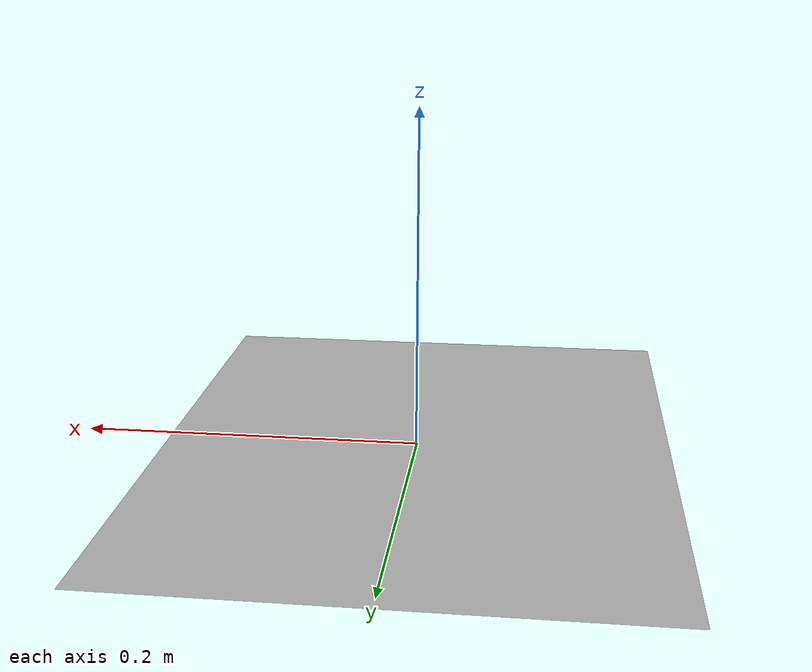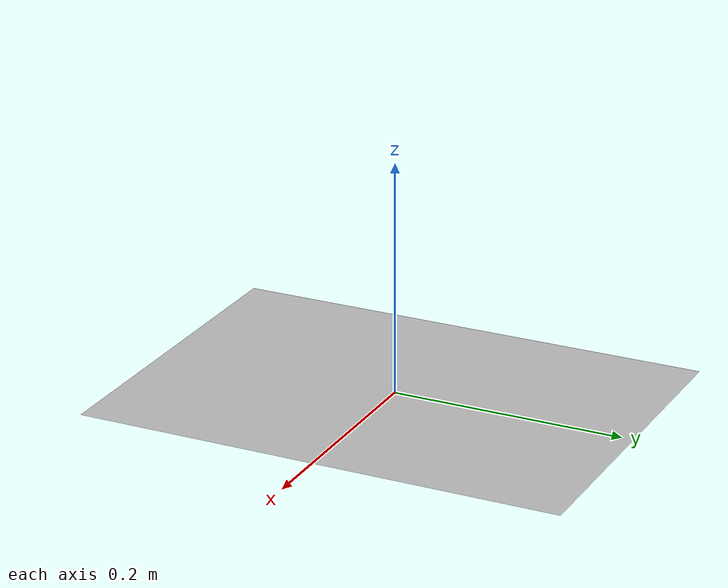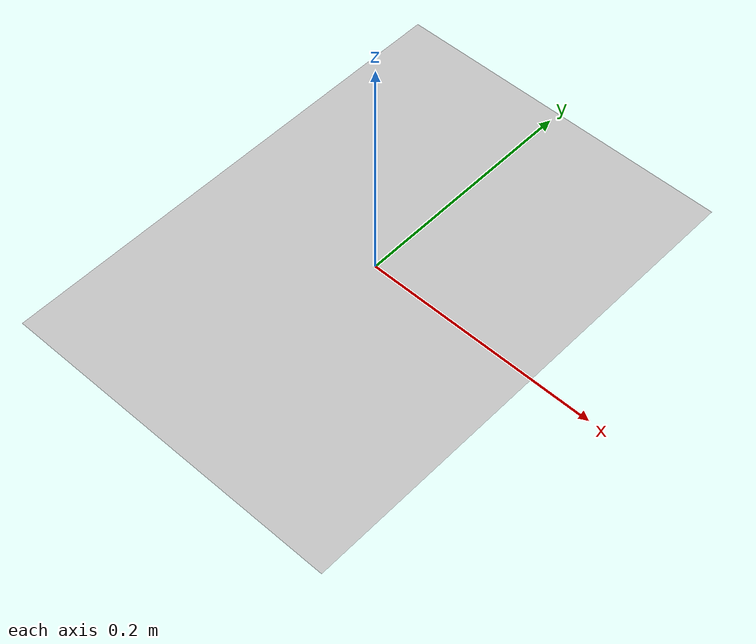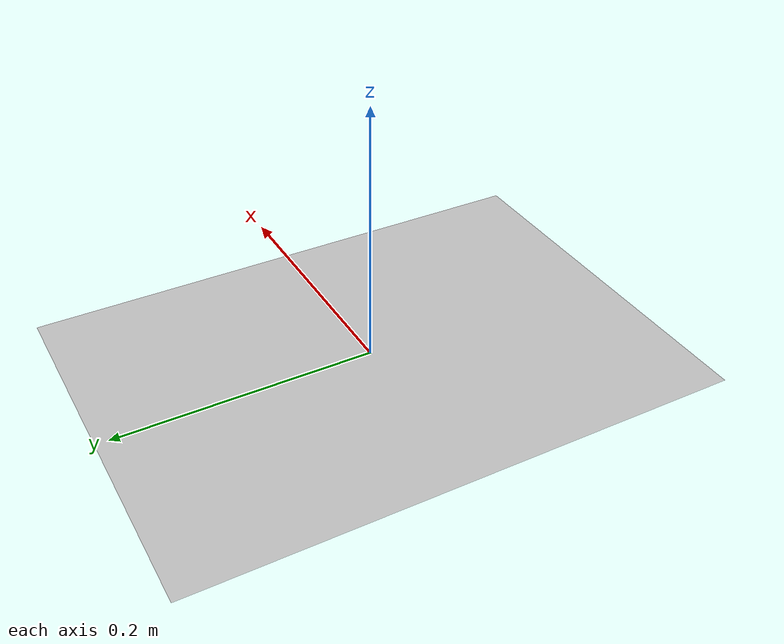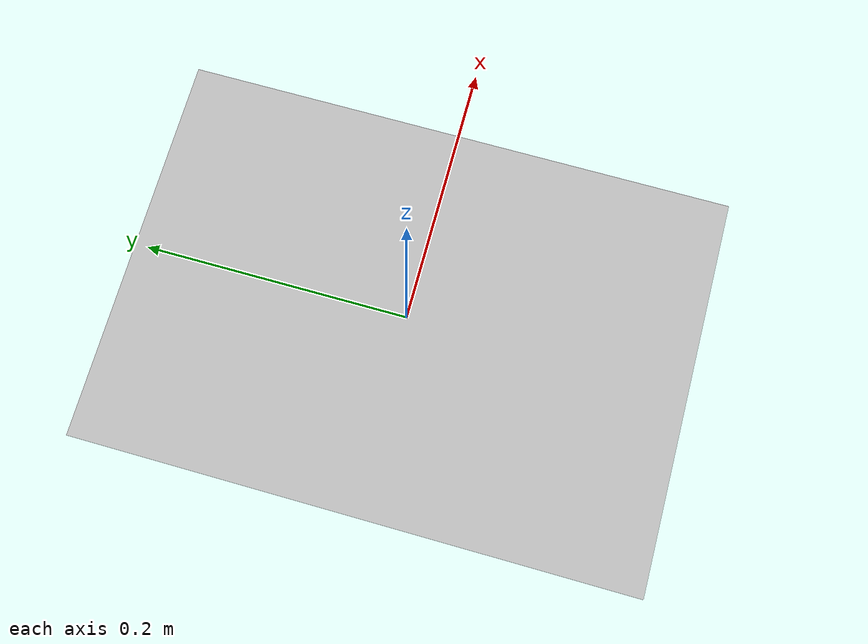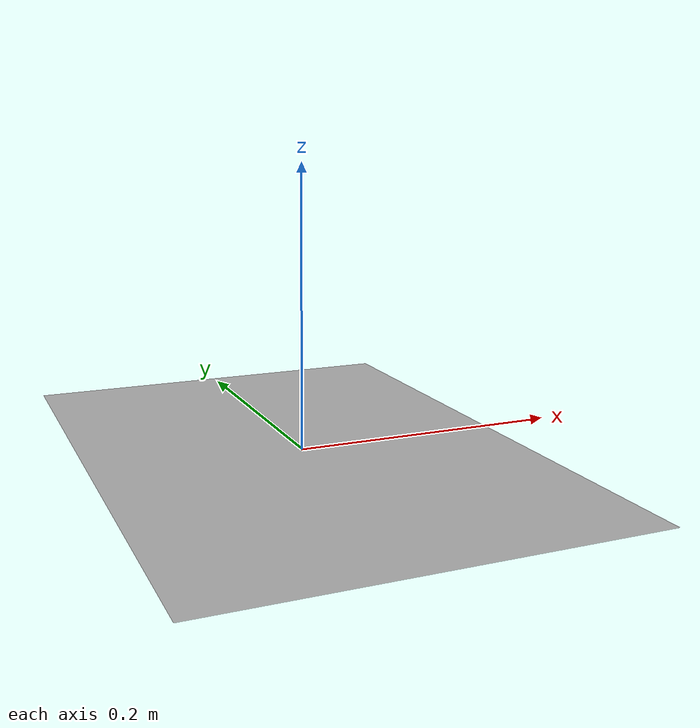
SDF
<?xml version="1.0" ?>
<sdf version="1.5">
  <model name="april_tag16_05_10">
    <static>true</static>
      <link name="april_tag16_05_10">
        <collision name="tag-collision">
          <pose>0 0 0 0 0 0</pose>
          <geometry>
            <box>
              <size>0.297 0.42 0.00</size>
            </box>
          </geometry>
        </collision>
        <visual name="tag-visual">
          <pose>0 0 0 0 0 0</pose>
          <geometry>
            <box>
              <size>0.297 0.42 0.00</size>
            </box>
          </geometry>
          <material>
            <script>
              <uri>model://april_tag16_05_10/materials/scripts</uri>
              <uri>model://april_tag16_05_10/materials/textures</uri>
              <name>april_tag16_05_10/Diffuse</name>
            </script>
          </material>
        </visual>
      </link>
  </model>
</sdf>
